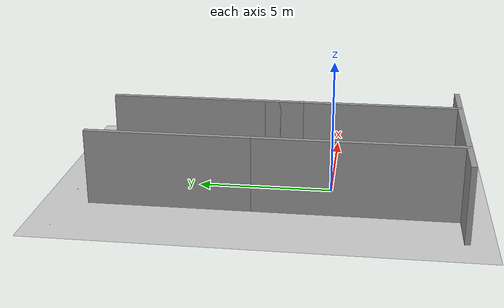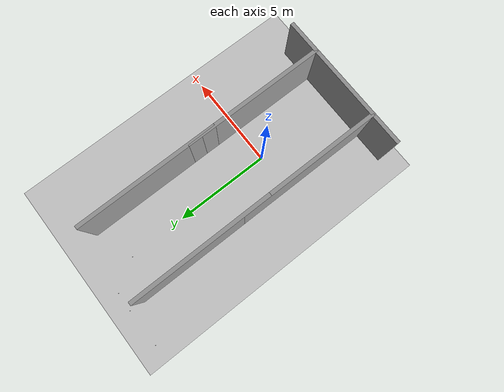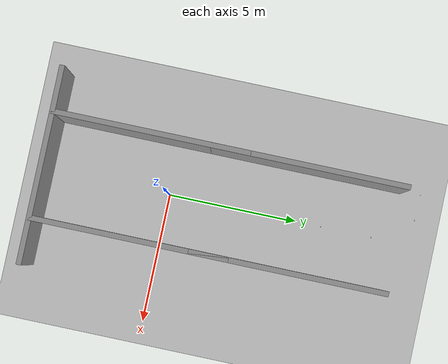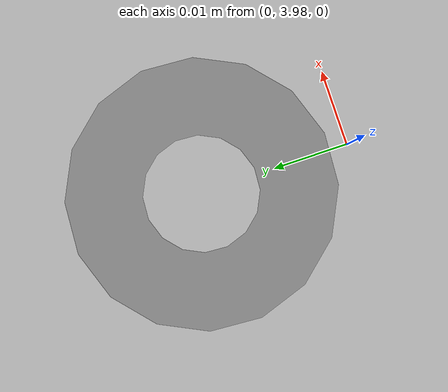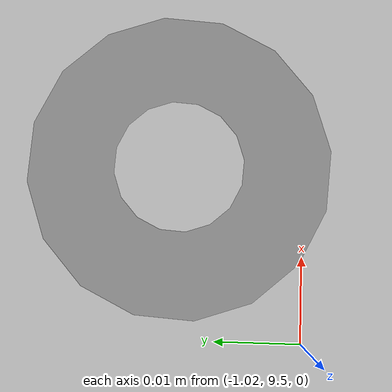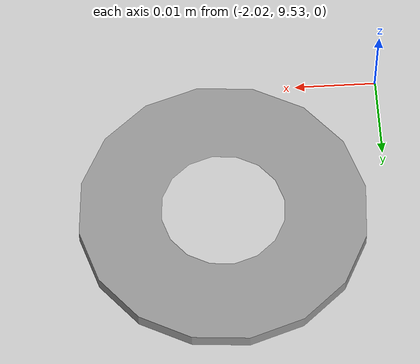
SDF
<sdf version="1.6">
 <world name="default">
  <light name="sun" type="directional">
   <pose>0 0 10 0 -0 0</pose>
   <diffuse>0.8 0.8 0.8 1</diffuse>
   <specular>0.2 0.2 0.2 1</specular>
   <attenuation>
    <range>1000</range>
    <constant>0.9</constant>
    <linear>0.01</linear>
    <quadratic>0.001</quadratic>
   </attenuation>
   <direction>-0.5 0.1 -0.9</direction>
  </light>
  <model name="ground_plane">
   <static>1</static>
   <link name="link">
    <collision name="collision">
     <geometry><plane><normal>0 0 1</normal><size>100 100</size></plane></geometry>
     <surface><friction><ode><mu>100</mu><mu2>50</mu2></ode></friction></surface>
    </collision>
    <visual name="visual">
     <cast_shadows>0</cast_shadows>
     <geometry><plane><normal>0 0 1</normal><size>100 100</size></plane></geometry>
     <material>
      <script><uri>file://media/materials/scripts/gazebo.material</uri><name>Gazebo/Grey</name></script>
     </material>
    </visual>
   </link>
  </model>
  <gravity>0 0 -9.8</gravity>
  <magnetic_field>6e-06 2.3e-05 -4.2e-05</magnetic_field>
  <atmosphere type="adiabatic"/>
  <physics name="default_physics" default="0" type="ode">
   <max_step_size>0.001</max_step_size>
   <real_time_factor>1</real_time_factor>
   <real_time_update_rate>1000</real_time_update_rate>
  </physics>
  <scene><ambient>0.4 0.4 0.4 1</ambient><background>0.7 0.7 0.7 1</background><shadows>1</shadows></scene>
  <spherical_coordinates>
   <surface_model>EARTH_WGS84</surface_model>
   <latitude_deg>0</latitude_deg>
   <longitude_deg>0</longitude_deg>
   <elevation>0</elevation>
   <heading_deg>0</heading_deg>
  </spherical_coordinates>
  <model name="grey_wall">
   <static>1</static>
   <link name="link">
    <pose>0 0 1.4 0 -0 0</pose>
    <collision name="collision"><geometry><box><size>7.5 0.2 2.8</size></box></geometry></collision>
    <visual name="visual">
     <cast_shadows>0</cast_shadows>
     <geometry><box><size>7.5 0.2 2.8</size></box></geometry>
     <material>
      <script>
       <uri>model://grey_wall/materials/scripts</uri>
       <uri>model://grey_wall/materials/textures</uri>
       <name>vrc/grey_wall</name>
      </script>
     </material>
    </visual>
   </link>
   <pose>-2 -1 0 0 -0 1.5708</pose>
  </model>
  <model name="grey_wall_clone">
   <static>1</static>
   <link name="link">
    <pose>0 0 1.4 0 -0 0</pose>
    <collision name="collision"><geometry><box><size>7.5 0.2 2.8</size></box></geometry></collision>
    <visual name="visual">
     <cast_shadows>0</cast_shadows>
     <geometry><box><size>7.5 0.2 2.8</size></box></geometry>
     <material>
      <script>
       <uri>model://grey_wall/materials/scripts</uri>
       <uri>model://grey_wall/materials/textures</uri>
       <name>vrc/grey_wall</name>
      </script>
     </material>
    </visual>
   </link>
   <pose>2 5 0 0 0 -1.5708</pose>
  </model>
  <model name="grey_wall_clone_0">
   <static>1</static>
   <link name="link">
    <pose>0 0 1.4 0 -0 0</pose>
    <collision name="collision"><geometry><box><size>7.5 0.2 2.8</size></box></geometry></collision>
    <visual name="visual">
     <cast_shadows>0</cast_shadows>
     <geometry><box><size>7.5 0.2 2.8</size></box></geometry>
     <material>
      <script>
       <uri>model://grey_wall/materials/scripts</uri>
       <uri>model://grey_wall/materials/textures</uri>
       <name>vrc/grey_wall</name>
      </script>
     </material>
    </visual>
   </link>
   <pose>0.017834 -4.70811 0 0 0 -3.14159</pose>
  </model>
  <model name="grey_wall_clone_1">
   <static>1</static>
   <link name="link">
    <pose>0 0 1.4 0 -0 0</pose>
    <collision name="collision"><geometry><box><size>7.5 0.2 2.8</size></box></geometry></collision>
    <visual name="visual">
     <cast_shadows>0</cast_shadows>
     <geometry><box><size>7.5 0.2 2.8</size></box></geometry>
     <material>
      <script>
       <uri>model://grey_wall/materials/scripts</uri>
       <uri>model://grey_wall/materials/textures</uri>
       <name>vrc/grey_wall</name>
      </script>
     </material>
    </visual>
   </link>
   <pose>-2 5 0 0 -0 1.5708</pose>
  </model>
  <model name="grey_wall_clone_2">
   <static>1</static>
   <link name="link">
    <pose>0 0 1.4 0 -0 0</pose>
    <collision name="collision"><geometry><box><size>7.5 0.2 2.8</size></box></geometry></collision>
    <visual name="visual">
     <cast_shadows>0</cast_shadows>
     <geometry><box><size>7.5 0.2 2.8</size></box></geometry>
     <material>
      <script>
       <uri>model://grey_wall/materials/scripts</uri>
       <uri>model://grey_wall/materials/textures</uri>
       <name>vrc/grey_wall</name>
      </script>
     </material>
    </visual>
   </link>
   <pose>2 -1 0 0 -0 1.5708</pose>
  </model>
  <model name="washer">
   <link name="link">
    <pose>0 0 0.001 0 -0 0</pose>
    <inertial>
     <mass>0.0122</mass>
     <inertia>
      <ixx>1.08758e-06</ixx>
      <ixy>0</ixy>
      <ixz>0</ixz>
      <iyy>1.08758e-06</iyy>
      <iyz>0</iyz>
      <izz>2.16703e-06</izz>
     </inertia>
    </inertial>
    <collision name="collision">
     <geometry><mesh><uri>model://washer/meshes/washer.dae</uri><scale>1 1 1</scale></mesh></geometry>
     <surface>
      <contact>
       <poissons_ratio>0.305</poissons_ratio>
       <elastic_modulus>2e+11</elastic_modulus>
       <ode><kp>100000</kp><kd>100</kd><max_vel>100</max_vel><min_depth>0.001</min_depth></ode>
      </contact>
      <friction>
       <torsional>
        <coefficient>1</coefficient>
        <use_patch_radius>0</use_patch_radius>
        <surface_radius>0.01</surface_radius>
       </torsional>
      </friction>
     </surface>
    </collision>
    <visual name="visual">
     <geometry><mesh><uri>model://washer/meshes/washer.dae</uri><scale>1 1 1</scale></mesh></geometry>
     <material>
      <script><uri>file://media/materials/scripts/gazebo.material</uri><name>Gazebo/Grey</name></script>
     </material>
    </visual>
   </link>
   <pose>0 2 -0.000436 -0.012677 -0.004264 3.8e-05</pose>
  </model>
  <model name="washer_0">
   <link name="link">
    <pose>0 0 0.001 0 -0 0</pose>
    <inertial>
     <mass>0.0122</mass>
     <inertia>
      <ixx>1.08758e-06</ixx>
      <ixy>0</ixy>
      <ixz>0</ixz>
      <iyy>1.08758e-06</iyy>
      <iyz>0</iyz>
      <izz>2.16703e-06</izz>
     </inertia>
    </inertial>
    <collision name="collision">
     <geometry><mesh><uri>model://washer/meshes/washer.dae</uri><scale>1 1 1</scale></mesh></geometry>
     <surface>
      <contact>
       <poissons_ratio>0.305</poissons_ratio>
       <elastic_modulus>2e+11</elastic_modulus>
       <ode><kp>100000</kp><kd>100</kd><max_vel>100</max_vel><min_depth>0.001</min_depth></ode>
      </contact>
      <friction>
       <torsional>
        <coefficient>1</coefficient>
        <use_patch_radius>0</use_patch_radius>
        <surface_radius>0.01</surface_radius>
       </torsional>
      </friction>
     </surface>
    </collision>
    <visual name="visual">
     <geometry><mesh><uri>model://washer/meshes/washer.dae</uri><scale>1 1 1</scale></mesh></geometry>
     <material>
      <script><uri>file://media/materials/scripts/gazebo.material</uri><name>Gazebo/Grey</name></script>
     </material>
    </visual>
   </link>
   <pose>0 4 -0.000374 -0.010864 -0.003654 2.8e-05</pose>
  </model>
  <model name="washer_1">
   <link name="link">
    <pose>0 0 0.001 0 -0 0</pose>
    <inertial>
     <mass>0.0122</mass>
     <inertia>
      <ixx>1.08758e-06</ixx>
      <ixy>0</ixy>
      <ixz>0</ixz>
      <iyy>1.08758e-06</iyy>
      <iyz>0</iyz>
      <izz>2.16703e-06</izz>
     </inertia>
    </inertial>
    <collision name="collision">
     <geometry><mesh><uri>model://washer/meshes/washer.dae</uri><scale>1 1 1</scale></mesh></geometry>
     <surface>
      <contact>
       <poissons_ratio>0.305</poissons_ratio>
       <elastic_modulus>2e+11</elastic_modulus>
       <ode><kp>100000</kp><kd>100</kd><max_vel>100</max_vel><min_depth>0.001</min_depth></ode>
      </contact>
      <friction>
       <torsional>
        <coefficient>1</coefficient>
        <use_patch_radius>0</use_patch_radius>
        <surface_radius>0.01</surface_radius>
       </torsional>
      </friction>
     </surface>
    </collision>
    <visual name="visual">
     <geometry><mesh><uri>model://washer/meshes/washer.dae</uri><scale>1 1 1</scale></mesh></geometry>
     <material>
      <script><uri>file://media/materials/scripts/gazebo.material</uri><name>Gazebo/Grey</name></script>
     </material>
    </visual>
   </link>
   <pose>0 6 -0.000312 -0.009051 -0.003045 1.9e-05</pose>
  </model>
  <model name="washer_2">
   <link name="link">
    <pose>0 0 0.001 0 -0 0</pose>
    <inertial>
     <mass>0.0122</mass>
     <inertia>
      <ixx>1.08758e-06</ixx>
      <ixy>0</ixy>
      <ixz>0</ixz>
      <iyy>1.08758e-06</iyy>
      <iyz>0</iyz>
      <izz>2.16703e-06</izz>
     </inertia>
    </inertial>
    <collision name="collision">
     <geometry><mesh><uri>model://washer/meshes/washer.dae</uri><scale>1 1 1</scale></mesh></geometry>
     <surface>
      <contact>
       <poissons_ratio>0.305</poissons_ratio>
       <elastic_modulus>2e+11</elastic_modulus>
       <ode><kp>100000</kp><kd>100</kd><max_vel>100</max_vel><min_depth>0.001</min_depth></ode>
      </contact>
      <friction>
       <torsional>
        <coefficient>1</coefficient>
        <use_patch_radius>0</use_patch_radius>
        <surface_radius>0.01</surface_radius>
       </torsional>
      </friction>
     </surface>
    </collision>
    <visual name="visual">
     <geometry><mesh><uri>model://washer/meshes/washer.dae</uri><scale>1 1 1</scale></mesh></geometry>
     <material>
      <script><uri>file://media/materials/scripts/gazebo.material</uri><name>Gazebo/Grey</name></script>
     </material>
    </visual>
   </link>
   <pose>0 8 -0.000249 -0.00724 -0.002437 1.2e-05</pose>
  </model>
  <model name="washer_3">
   <link name="link">
    <pose>0 0 0.001 0 -0 0</pose>
    <inertial>
     <mass>0.0122</mass>
     <inertia>
      <ixx>1.08758e-06</ixx>
      <ixy>0</ixy>
      <ixz>0</ixz>
      <iyy>1.08758e-06</iyy>
      <iyz>0</iyz>
      <izz>2.16703e-06</izz>
     </inertia>
    </inertial>
    <collision name="collision">
     <geometry><mesh><uri>model://washer/meshes/washer.dae</uri><scale>1 1 1</scale></mesh></geometry>
     <surface>
      <contact>
       <poissons_ratio>0.305</poissons_ratio>
       <elastic_modulus>2e+11</elastic_modulus>
       <ode><kp>100000</kp><kd>100</kd><max_vel>100</max_vel><min_depth>0.001</min_depth></ode>
      </contact>
      <friction>
       <torsional>
        <coefficient>1</coefficient>
        <use_patch_radius>0</use_patch_radius>
        <surface_radius>0.01</surface_radius>
       </torsional>
      </friction>
     </surface>
    </collision>
    <visual name="visual">
     <geometry><mesh><uri>model://washer/meshes/washer.dae</uri><scale>1 1 1</scale></mesh></geometry>
     <material>
      <script><uri>file://media/materials/scripts/gazebo.material</uri><name>Gazebo/Grey</name></script>
     </material>
    </visual>
   </link>
   <pose>-1 9.51459 -0.000187 -0.005431 -0.001828 7e-06</pose>
  </model>
  <model name="washer_4">
   <link name="link">
    <pose>0 0 0.001 0 -0 0</pose>
    <inertial>
     <mass>0.0122</mass>
     <inertia>
      <ixx>1.08758e-06</ixx>
      <ixy>0</ixy>
      <ixz>0</ixz>
      <iyy>1.08758e-06</iyy>
      <iyz>0</iyz>
      <izz>2.16703e-06</izz>
     </inertia>
    </inertial>
    <collision name="collision">
     <geometry><mesh><uri>model://washer/meshes/washer.dae</uri><scale>1 1 1</scale></mesh></geometry>
     <surface>
      <contact>
       <poissons_ratio>0.305</poissons_ratio>
       <elastic_modulus>2e+11</elastic_modulus>
       <ode><kp>100000</kp><kd>100</kd><max_vel>100</max_vel><min_depth>0.001</min_depth></ode>
      </contact>
      <friction>
       <torsional>
        <coefficient>1</coefficient>
        <use_patch_radius>0</use_patch_radius>
        <surface_radius>0.01</surface_radius>
       </torsional>
      </friction>
     </surface>
    </collision>
    <visual name="visual">
     <geometry><mesh><uri>model://washer/meshes/washer.dae</uri><scale>1 1 1</scale></mesh></geometry>
     <material>
      <script><uri>file://media/materials/scripts/gazebo.material</uri><name>Gazebo/Grey</name></script>
     </material>
    </visual>
   </link>
   <pose>-2 9.54801 -0.000125 -0.003623 -0.00122 3e-06</pose>
  </model>
  <model name="washer_5">
   <link name="link">
    <pose>0 0 0.001 0 -0 0</pose>
    <inertial>
     <mass>0.0122</mass>
     <inertia>
      <ixx>1.08758e-06</ixx>
      <ixy>0</ixy>
      <ixz>0</ixz>
      <iyy>1.08758e-06</iyy>
      <iyz>0</iyz>
      <izz>2.16703e-06</izz>
     </inertia>
    </inertial>
    <collision name="collision">
     <geometry><mesh><uri>model://washer/meshes/washer.dae</uri><scale>1 1 1</scale></mesh></geometry>
     <surface>
      <contact>
       <poissons_ratio>0.305</poissons_ratio>
       <elastic_modulus>2e+11</elastic_modulus>
       <ode><kp>100000</kp><kd>100</kd><max_vel>100</max_vel><min_depth>0.001</min_depth></ode>
      </contact>
      <friction>
       <torsional>
        <coefficient>1</coefficient>
        <use_patch_radius>0</use_patch_radius>
        <surface_radius>0.01</surface_radius>
       </torsional>
      </friction>
     </surface>
    </collision>
    <visual name="visual">
     <geometry><mesh><uri>model://washer/meshes/washer.dae</uri><scale>1 1 1</scale></mesh></geometry>
     <material>
      <script><uri>file://media/materials/scripts/gazebo.material</uri><name>Gazebo/Grey</name></script>
     </material>
    </visual>
   </link>
   <pose>-4 9.51009 -6.2e-05 -0.001818 -0.000613 1e-06</pose>
  </model>
 </world>
</sdf>
